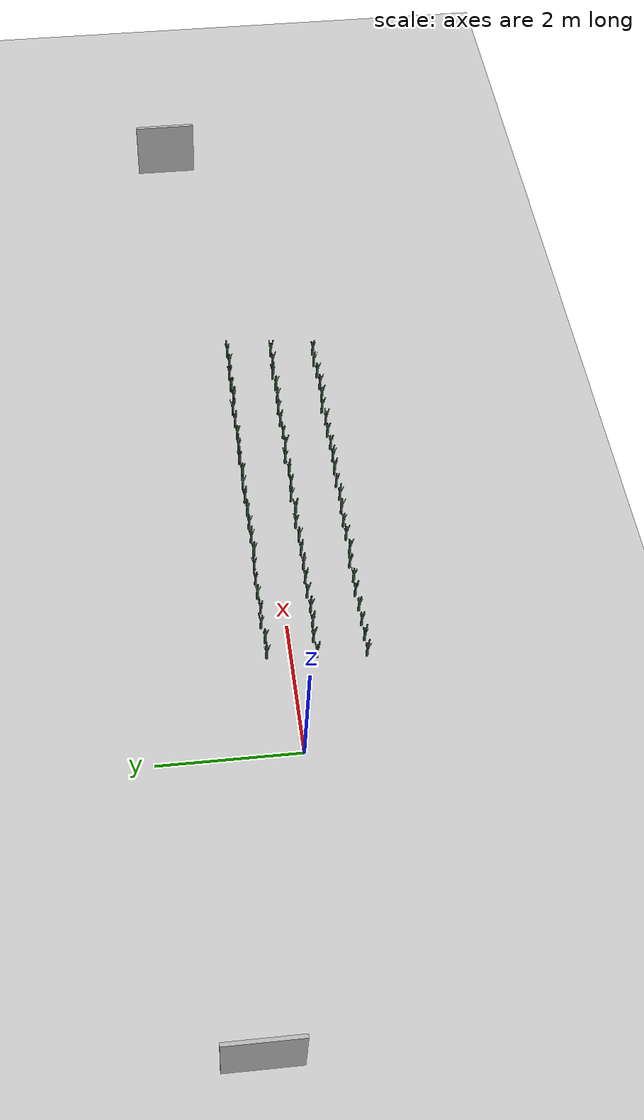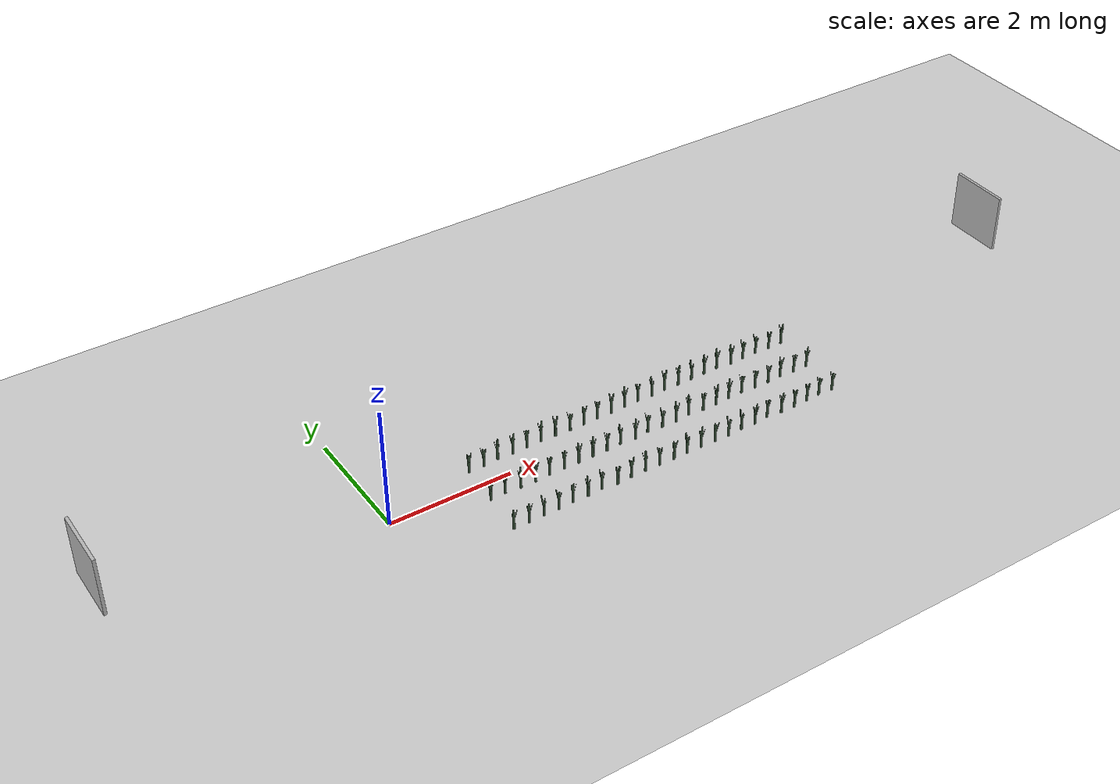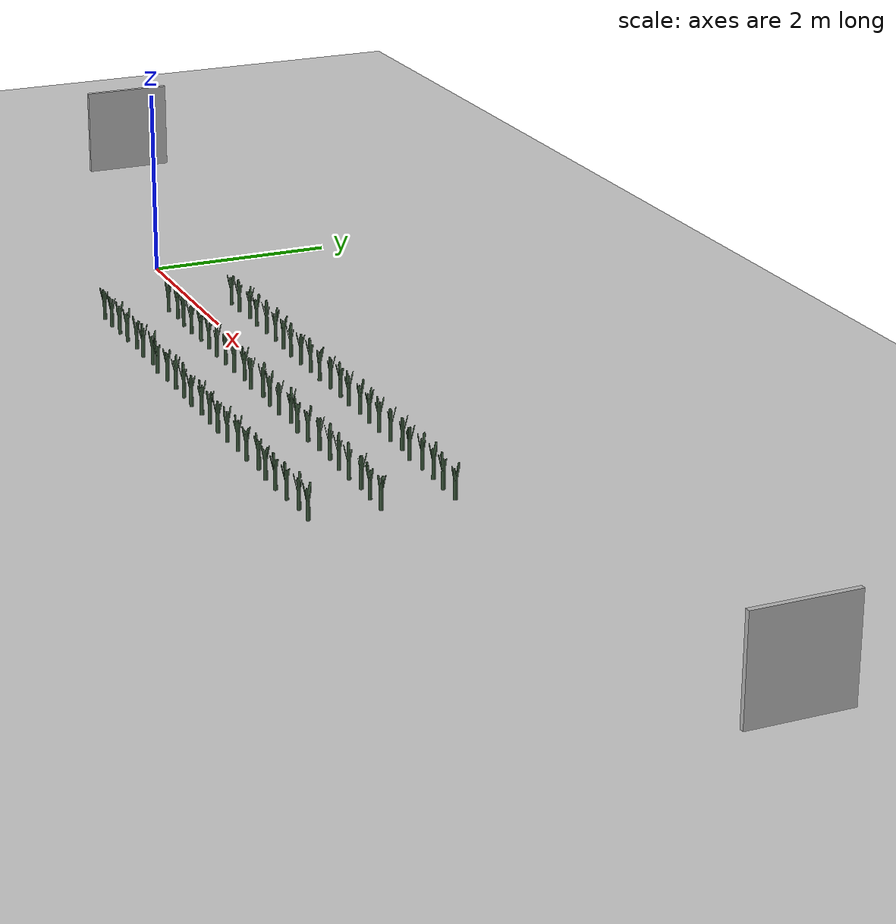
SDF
<sdf version="1.6">
 <world name="default">
  <light name="sun" type="directional">
   <pose>0 0 10 0 -0 0</pose>
   <diffuse>0.5 0.5 0.5 1</diffuse>
   <specular>0.1 0.1 0.1 1</specular>
   <attenuation>
    <range>1000</range>
    <constant>0.9</constant>
    <linear>0.01</linear>
    <quadratic>0.001</quadratic>
   </attenuation>
   <direction>0.9 0.5 -1</direction>
  </light>
  <scene><background>130 200 255 1</background><ambient>130 140 140 1</ambient></scene>
  <include><uri>model://Sign</uri><pose>12 1 0 0 0 0</pose><static>1</static></include>
  <include><uri>model://Sign</uri><pose>-4 1 0 0 0 0</pose><static>1</static></include>
  <include><uri>model://dirt_plane</uri></include>
  <include><uri>model://Leek</uri><pose>1.500000 0.340049 0.15 0 0 -89.556070</pose><static>0</static></include>
  <include>
   <uri>model://Leek</uri>
   <pose>1.750000 0.337765 0.15 0 0 -110.116102</pose>
   <static>0</static>
  </include>
  <include><uri>model://Leek</uri><pose>2.000000 0.363369 0.15 0 0 120.320336</pose><static>0</static></include>
  <include><uri>model://Leek</uri><pose>2.250000 0.343087 0.15 0 0 -62.213648</pose><static>0</static></include>
  <include><uri>model://Leek</uri><pose>2.500000 0.360783 0.15 0 0 97.043774</pose><static>0</static></include>
  <include><uri>model://Leek</uri><pose>2.750000 0.361950 0.15 0 0 107.550331</pose><static>0</static></include>
  <include><uri>model://Leek</uri><pose>3.000000 0.353523 0.15 0 0 31.708378</pose><static>0</static></include>
  <include>
   <uri>model://Leek</uri>
   <pose>3.250000 0.335640 0.15 0 0 -129.235692</pose>
   <static>0</static>
  </include>
  <include><uri>model://Leek</uri><pose>3.500000 0.345598 0.15 0 0 -39.616462</pose><static>0</static></include>
  <include><uri>model://Leek</uri><pose>3.750000 0.351024 0.15 0 0 9.213065</pose><static>0</static></include>
  <include><uri>model://Leek</uri><pose>4.000000 0.347226 0.15 0 0 -24.962572</pose><static>0</static></include>
  <include><uri>model://Leek</uri><pose>4.250000 0.361811 0.15 0 0 106.298874</pose><static>0</static></include>
  <include><uri>model://Leek</uri><pose>4.500000 0.367789 0.15 0 0 160.104943</pose><static>0</static></include>
  <include><uri>model://Leek</uri><pose>4.750000 0.346668 0.15 0 0 -29.984400</pose><static>0</static></include>
  <include><uri>model://Leek</uri><pose>5.000000 0.364711 0.15 0 0 132.397805</pose><static>0</static></include>
  <include><uri>model://Leek</uri><pose>5.250000 0.352867 0.15 0 0 25.799911</pose><static>0</static></include>
  <include><uri>model://Leek</uri><pose>5.500000 0.349469 0.15 0 0 -4.779896</pose><static>0</static></include>
  <include><uri>model://Leek</uri><pose>5.750000 0.359018 0.15 0 0 81.161296</pose><static>0</static></include>
  <include><uri>model://Leek</uri><pose>6.000000 0.369497 0.15 0 0 175.473302</pose><static>0</static></include>
  <include>
   <uri>model://Leek</uri>
   <pose>6.250000 0.330420 0.15 0 0 -176.219698</pose>
   <static>0</static>
  </include>
  <include><uri>model://Leek</uri><pose>6.500000 0.350259 0.15 0 0 2.330678</pose><static>0</static></include>
  <include><uri>model://Leek</uri><pose>6.750000 0.350946 0.15 0 0 8.515498</pose><static>0</static></include>
  <include>
   <uri>model://Leek</uri>
   <pose>7.000000 0.332887 0.15 0 0 -154.013629</pose>
   <static>0</static>
  </include>
  <include>
   <uri>model://Leek</uri>
   <pose>7.250000 0.337479 0.15 0 0 -112.686628</pose>
   <static>0</static>
  </include>
  <include>
   <uri>model://Leek</uri>
   <pose>1.450321 -0.358479 0.15 0 0 -76.309871</pose>
   <static>0</static>
  </include>
  <include><uri>model://Leek</uri><pose>1.700321 -0.341054 0.15 0 0 80.510344</pose><static>0</static></include>
  <include>
   <uri>model://Leek</uri>
   <pose>1.950321 -0.364030 0.15 0 0 -126.272006</pose>
   <static>0</static>
  </include>
  <include>
   <uri>model://Leek</uri>
   <pose>2.200321 -0.366961 0.15 0 0 -152.646987</pose>
   <static>0</static>
  </include>
  <include><uri>model://Leek</uri><pose>2.450321 -0.349612 0.15 0 0 3.489539</pose><static>0</static></include>
  <include>
   <uri>model://Leek</uri>
   <pose>2.700321 -0.353077 0.15 0 0 -27.689399</pose>
   <static>0</static>
  </include>
  <include>
   <uri>model://Leek</uri>
   <pose>2.950321 -0.359813 0.15 0 0 -88.312650</pose>
   <static>0</static>
  </include>
  <include>
   <uri>model://Leek</uri>
   <pose>3.200321 -0.355656 0.15 0 0 -50.908417</pose>
   <static>0</static>
  </include>
  <include>
   <uri>model://Leek</uri>
   <pose>3.450321 -0.355963 0.15 0 0 -53.665899</pose>
   <static>0</static>
  </include>
  <include><uri>model://Leek</uri><pose>3.700321 -0.339359 0.15 0 0 95.768373</pose><static>0</static></include>
  <include>
   <uri>model://Leek</uri>
   <pose>3.950321 -0.367530 0.15 0 0 -157.774271</pose>
   <static>0</static>
  </include>
  <include>
   <uri>model://Leek</uri>
   <pose>4.200321 -0.330875 0.15 0 0 172.125107</pose>
   <static>0</static>
  </include>
  <include>
   <uri>model://Leek</uri>
   <pose>4.450321 -0.358854 0.15 0 0 -79.688195</pose>
   <static>0</static>
  </include>
  <include>
   <uri>model://Leek</uri>
   <pose>4.700321 -0.362607 0.15 0 0 -113.461494</pose>
   <static>0</static>
  </include>
  <include>
   <uri>model://Leek</uri>
   <pose>4.950321 -0.332424 0.15 0 0 158.183934</pose>
   <static>0</static>
  </include>
  <include>
   <uri>model://Leek</uri>
   <pose>5.200321 -0.366377 0.15 0 0 -147.393074</pose>
   <static>0</static>
  </include>
  <include>
   <uri>model://Leek</uri>
   <pose>5.450321 -0.360419 0.15 0 0 -93.772573</pose>
   <static>0</static>
  </include>
  <include><uri>model://Leek</uri><pose>5.700321 -0.344502 0.15 0 0 49.479673</pose><static>0</static></include>
  <include><uri>model://Leek</uri><pose>5.950321 -0.341327 0.15 0 0 78.056427</pose><static>0</static></include>
  <include>
   <uri>model://Leek</uri>
   <pose>6.200321 -0.355282 0.15 0 0 -47.534293</pose>
   <static>0</static>
  </include>
  <include>
   <uri>model://Leek</uri>
   <pose>6.450321 -0.360856 0.15 0 0 -97.705430</pose>
   <static>0</static>
  </include>
  <include><uri>model://Leek</uri><pose>6.700321 -0.343054 0.15 0 0 62.516791</pose><static>0</static></include>
  <include>
   <uri>model://Leek</uri>
   <pose>6.950321 -0.364280 0.15 0 0 -128.521294</pose>
   <static>0</static>
  </include>
  <include>
   <uri>model://Leek</uri>
   <pose>7.200321 -0.364771 0.15 0 0 -132.935793</pose>
   <static>0</static>
  </include>
  <include>
   <uri>model://Leek</uri>
   <pose>1.408750 -1.057223 0.15 0 0 -65.009566</pose>
   <static>0</static>
  </include>
  <include>
   <uri>model://Leek</uri>
   <pose>1.658750 -1.059333 0.15 0 0 -83.998640</pose>
   <static>0</static>
  </include>
  <include>
   <uri>model://Leek</uri>
   <pose>1.908750 -1.054672 0.15 0 0 -42.046972</pose>
   <static>0</static>
  </include>
  <include>
   <uri>model://Leek</uri>
   <pose>2.158750 -1.053950 0.15 0 0 -35.550192</pose>
   <static>0</static>
  </include>
  <include>
   <uri>model://Leek</uri>
   <pose>2.408750 -1.036325 0.15 0 0 123.077755</pose>
   <static>0</static>
  </include>
  <include>
   <uri>model://Leek</uri>
   <pose>2.658750 -1.051246 0.15 0 0 -11.212937</pose>
   <static>0</static>
  </include>
  <include>
   <uri>model://Leek</uri>
   <pose>2.908750 -1.030915 0.15 0 0 171.763369</pose>
   <static>0</static>
  </include>
  <include>
   <uri>model://Leek</uri>
   <pose>3.158750 -1.067783 0.15 0 0 -160.044793</pose>
   <static>0</static>
  </include>
  <include><uri>model://Leek</uri><pose>3.408750 -1.049451 0.15 0 0 4.937080</pose><static>0</static></include>
  <include><uri>model://Leek</uri><pose>3.658750 -1.047793 0.15 0 0 19.865756</pose><static>0</static></include>
  <include>
   <uri>model://Leek</uri>
   <pose>3.908750 -1.052470 0.15 0 0 -22.232971</pose>
   <static>0</static>
  </include>
  <include>
   <uri>model://Leek</uri>
   <pose>4.158750 -1.064880 0.15 0 0 -133.920598</pose>
   <static>0</static>
  </include>
  <include><uri>model://Leek</uri><pose>4.408750 -1.047032 0.15 0 0 26.709202</pose><static>0</static></include>
  <include>
   <uri>model://Leek</uri>
   <pose>4.658750 -1.053592 0.15 0 0 -32.331919</pose>
   <static>0</static>
  </include>
  <include>
   <uri>model://Leek</uri>
   <pose>4.908750 -1.064187 0.15 0 0 -127.683087</pose>
   <static>0</static>
  </include>
  <include>
   <uri>model://Leek</uri>
   <pose>5.158750 -1.063063 0.15 0 0 -117.571001</pose>
   <static>0</static>
  </include>
  <include><uri>model://Leek</uri><pose>5.408750 -1.049121 0.15 0 0 7.914247</pose><static>0</static></include>
  <include>
   <uri>model://Leek</uri>
   <pose>5.658750 -1.057811 0.15 0 0 -70.295319</pose>
   <static>0</static>
  </include>
  <include>
   <uri>model://Leek</uri>
   <pose>5.908750 -1.030774 0.15 0 0 173.033678</pose>
   <static>0</static>
  </include>
  <include>
   <uri>model://Leek</uri>
   <pose>6.158750 -1.061298 0.15 0 0 -101.679653</pose>
   <static>0</static>
  </include>
  <include>
   <uri>model://Leek</uri>
   <pose>6.408750 -1.063616 0.15 0 0 -122.544216</pose>
   <static>0</static>
  </include>
  <include>
   <uri>model://Leek</uri>
   <pose>6.658750 -1.052447 0.15 0 0 -22.024834</pose>
   <static>0</static>
  </include>
  <include>
   <uri>model://Leek</uri>
   <pose>6.908750 -1.033662 0.15 0 0 147.042474</pose>
   <static>0</static>
  </include>
  <include><uri>model://Leek</uri><pose>7.158750 -1.046258 0.15 0 0 33.677370</pose><static>0</static></include>
 </world>
</sdf>

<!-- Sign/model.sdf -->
<sdf version='1.6'>
  <model name='Sign'>
    <link name='link'>
      <pose frame=''>0 0 0 0 -0 0</pose>
      <inertial>
        <mass>1</mass>
        <inertia>
          <ixx>0.166667</ixx>
          <ixy>0</ixy>
          <ixz>0</ixz>
          <iyy>0.166667</iyy>
          <iyz>0</iyz>
          <izz>0.166667</izz>
        </inertia>
        <pose frame=''>0 0 0 0 -0 0</pose>
      </inertial>
      <self_collide>0</self_collide>
      <kinematic>0</kinematic>
      <gravity>1</gravity>
      <visual name='visual'>
        <geometry>
          <box>
            <size>1 0.05 1</size>
          </box>
        </geometry>
        <material>
          <script>
            <uri>model://ground_plane/materials/scripts/my_ground_plane.material</uri>
            <uri>model://ground_plane/materials/textures</uri>
            <name>my_ground_plane/NaioLogo</name>
          </script>
        </material>
        <pose frame=''>0 0 0.5 0 -0 1.57</pose>
        <cast_shadows>1</cast_shadows>
        <transparency>0</transparency>
      </visual>
    </link>
    <static>1</static>
    <allow_auto_disable>1</allow_auto_disable>
  </model>
</sdf>

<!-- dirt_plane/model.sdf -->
<sdf version="1.4">
<model name="dirt_plane">
  <static>true</static>
    <link name="link">
      <collision name="collision">
        <geometry>
          <plane>
            <normal>0 0 1</normal>
            <size>100 100</size>
          </plane>
        </geometry>
        <surface>
          <friction>
            <ode>
              <mu>100</mu>
              <mu2>50</mu2>
            </ode>
          </friction>
        </surface>
      </collision>
      <visual name="visual">
        <cast_shadows>false</cast_shadows>
        <geometry>
          <plane>
            <normal>0 0 1</normal>
            <size>100 100</size>
          </plane>
        </geometry>
        <material>
          <script>
            <uri>model://ground_plane/materials/scripts/my_ground_plane.material</uri>
            <uri>model://ground_plane/materials/textures</uri>
            <name>my_ground_plane/Dirt</name>
          </script>
        </material>
      </visual>
    </link>
  </model>
</sdf>

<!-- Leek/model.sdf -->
<sdf version='1.6'>
  <model name='Leek'>
    <link name='link'>
      <pose frame=''>0 0 0 0 -0 0</pose>
      <inertial>
        <mass>1</mass>
        <inertia>
          <ixx>0.145833</ixx>
          <ixy>0</ixy>
          <ixz>0</ixz>
          <iyy>0.145833</iyy>
          <iyz>0</iyz>
          <izz>0.125</izz>
        </inertia>
        <pose frame=''>0 0 0 0 -0 0</pose>
      </inertial>
      <self_collide>0</self_collide>
      <kinematic>0</kinematic>
      <gravity>1</gravity>
      <visual name='visual'>
        <geometry>
          <mesh>
            <uri>model://Leek/Poireau.dae</uri>
            <scale>1 1 1</scale>
          </mesh>
        </geometry>
        <material>
          <script>
            <name>Gazebo/Grey</name>
            <uri>file://media/materials/scripts/gazebo.material</uri>
          </script>
          <ambient>0.3 0.7 0.4 0</ambient>
          <diffuse>0.2 0.3 0.2 0</diffuse>
          <specular>0 0 0 1</specular>
          <emissive>0 0 0 1</emissive>
          <shader type='vertex'>
            <normal_map>__default__</normal_map>
          </shader>
        </material>
        <pose frame=''>0 0 -0.08 0 -0 0</pose>
        <cast_shadows>1</cast_shadows>
        <transparency>0</transparency>
      </visual>
      <collision name='collision'>
        <laser_retro>0</laser_retro>
        <max_contacts>10</max_contacts>
        <pose frame=''>0 0 0 0 -0 0</pose>
        <geometry>
          <cylinder>
            <radius>0.02</radius>
            <length>0.25</length>
          </cylinder>
        </geometry>
        <surface>
          <friction>
            <ode>
              <mu>1</mu>
              <mu2>1</mu2>
              <fdir1>0 0 0</fdir1>
              <slip1>0</slip1>
              <slip2>0</slip2>
            </ode>
            <torsional>
              <coefficient>1</coefficient>
              <patch_radius>0</patch_radius>
              <surface_radius>0</surface_radius>
              <use_patch_radius>1</use_patch_radius>
              <ode>
                <slip>0</slip>
              </ode>
            </torsional>
          </friction>
          <bounce>
            <restitution_coefficient>0</restitution_coefficient>
            <threshold>1e+06</threshold>
          </bounce>
          <contact>
            <collide_without_contact>0</collide_without_contact>
            <collide_without_contact_bitmask>1</collide_without_contact_bitmask>
            <collide_bitmask>1</collide_bitmask>
            <ode>
              <soft_cfm>0</soft_cfm>
              <soft_erp>0.2</soft_erp>
              <kp>1e+13</kp>
              <kd>1</kd>
              <max_vel>0.01</max_vel>
              <min_depth>0</min_depth>
            </ode>
            <bullet>
              <split_impulse>1</split_impulse>
              <split_impulse_penetration_threshold>-0.01</split_impulse_penetration_threshold>
              <soft_cfm>0</soft_cfm>
              <soft_erp>0.2</soft_erp>
              <kp>1e+13</kp>
              <kd>1</kd>
            </bullet>
          </contact>
        </surface>
      </collision>
    </link>
    <static>0</static>
    <allow_auto_disable>1</allow_auto_disable>
  </model>
</sdf>
